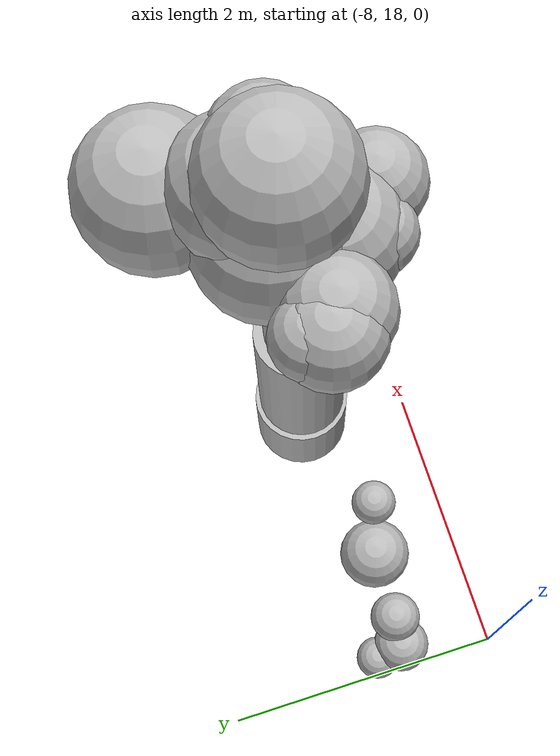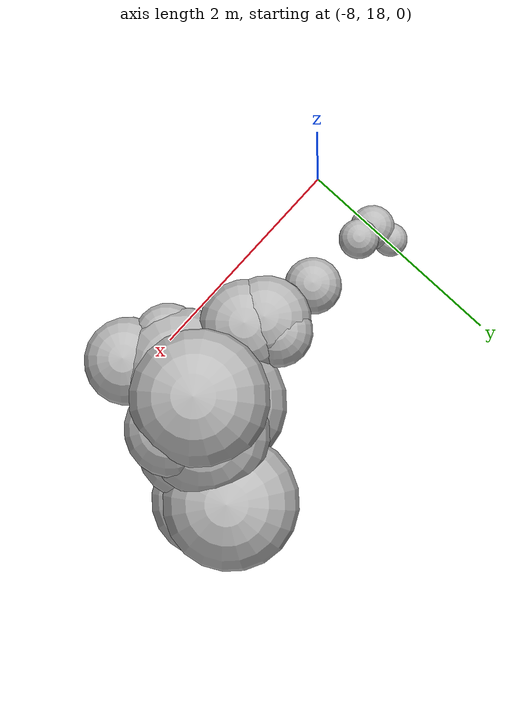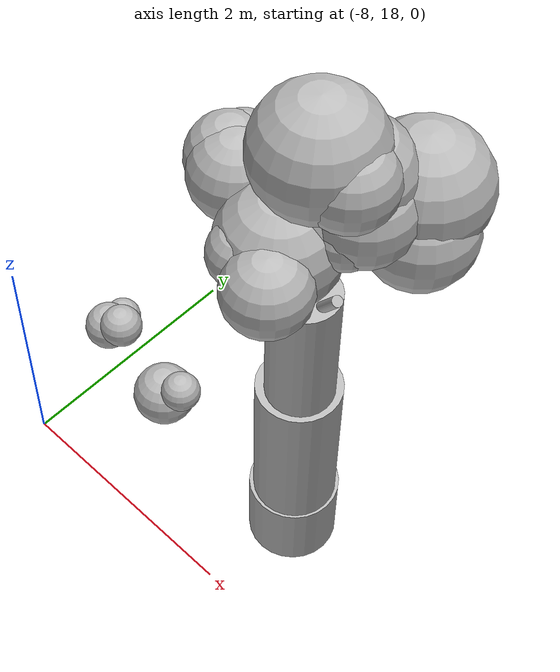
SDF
<sdf version="1.6">
 <world name="default">
  <model name="bush_8">
   <static>true</static>
   <pose>-5.8927 18.8179 0 0 0 0</pose>
   <link name="trunk">
    <pose>0 0 1.5000 0 0 0</pose>
    <collision name="trunk_c">
     <geometry><cylinder><radius>0.3500</radius><length>3.0000</length></cylinder></geometry>
    </collision>
   </link>
   <link name="trunk_v0">
    <pose>0.0014 -0.0010 0.3100 0 0 0</pose>
    <visual name="trunk_v0_v">
     <geometry><cylinder><radius>0.3448</radius><length>0.6448</length></cylinder></geometry>
     <material>
      <script>
       <uri>model://bushfire/materials/scripts</uri>
       <uri>model://bushfire/materials/textures</uri>
       <name>Bushfire/CharBark</name>
      </script>
     </material>
    </visual>
   </link>
   <link name="trunk_v1">
    <pose>0.0104 -0.0074 1.2700 0 0 0</pose>
    <visual name="trunk_v1_v">
     <geometry><cylinder><radius>0.3150</radius><length>1.3520</length></cylinder></geometry>
     <material>
      <script>
       <uri>model://bushfire/materials/scripts</uri>
       <uri>model://bushfire/materials/textures</uri>
       <name>Bushfire/BarkStringy</name>
      </script>
     </material>
    </visual>
   </link>
   <link name="trunk_v2">
    <pose>0.0263 -0.0187 2.4600 0 0 0</pose>
    <visual name="trunk_v2_v">
     <geometry><cylinder><radius>0.2520</radius><length>1.1232</length></cylinder></geometry>
     <material>
      <script>
       <uri>model://bushfire/materials/scripts</uri>
       <uri>model://bushfire/materials/textures</uri>
       <name>Bushfire/BarkStringy</name>
      </script>
     </material>
    </visual>
   </link>
   <link name="branch0">
    <pose>0.0580 0.2071 3.0791 0 0.5555 1.2979</pose>
    <visual name="branch0_v">
     <geometry><cylinder><radius>0.0413</radius><length>0.8155</length></cylinder></geometry>
     <material>
      <script>
       <uri>model://bushfire/materials/scripts</uri>
       <uri>model://bushfire/materials/textures</uri>
       <name>Bushfire/BarkStringy</name>
      </script>
     </material>
    </visual>
   </link>
   <link name="branch1">
    <pose>-0.2522 -0.0078 3.1472 0 0.6922 3.1724</pose>
    <visual name="branch1_v">
     <geometry><cylinder><radius>0.0447</radius><length>0.7907</length></cylinder></geometry>
     <material>
      <script>
       <uri>model://bushfire/materials/scripts</uri>
       <uri>model://bushfire/materials/textures</uri>
       <name>Bushfire/BarkStringy</name>
      </script>
     </material>
    </visual>
   </link>
   <link name="branch2">
    <pose>-0.0328 -0.1909 2.7849 0 0.7355 4.5420</pose>
    <visual name="branch2_v">
     <geometry><cylinder><radius>0.0536</radius><length>0.5775</length></cylinder></geometry>
     <material>
      <script>
       <uri>model://bushfire/materials/scripts</uri>
       <uri>model://bushfire/materials/textures</uri>
       <name>Bushfire/BarkStringy</name>
      </script>
     </material>
    </visual>
   </link>
   <link name="branch3">
    <pose>0.1578 -0.0224 2.9767 0 0.5870 6.1423</pose>
    <visual name="branch3_v">
     <geometry><cylinder><radius>0.0392</radius><length>0.5756</length></cylinder></geometry>
     <material>
      <script>
       <uri>model://bushfire/materials/scripts</uri>
       <uri>model://bushfire/materials/textures</uri>
       <name>Bushfire/BarkStringy</name>
      </script>
     </material>
    </visual>
   </link>
   <link name="foliage0">
    <pose>0.1099 0.2719 3.9514 0 0 0</pose>
    <visual name="foliage0_v">
     <geometry><sphere><radius>0.4008</radius></sphere></geometry>
     <material>
      <script>
       <uri>model://bushfire/materials/scripts</uri>
       <uri>model://bushfire/materials/textures</uri>
       <name>Bushfire/Foliage2</name>
      </script>
     </material>
    </visual>
   </link>
   <link name="foliage1">
    <pose>-0.5717 -0.0326 3.6846 0 0 0</pose>
    <visual name="foliage1_v">
     <geometry><sphere><radius>0.3190</radius></sphere></geometry>
     <material>
      <script>
       <uri>model://bushfire/materials/scripts</uri>
       <uri>model://bushfire/materials/textures</uri>
       <name>Bushfire/Foliage2</name>
      </script>
     </material>
    </visual>
   </link>
   <link name="foliage2">
    <pose>0.1235 -0.4739 3.5373 0 0 0</pose>
    <visual name="foliage2_v">
     <geometry><sphere><radius>0.2976</radius></sphere></geometry>
     <material>
      <script>
       <uri>model://bushfire/materials/scripts</uri>
       <uri>model://bushfire/materials/textures</uri>
       <name>Bushfire/Foliage1</name>
      </script>
     </material>
    </visual>
   </link>
   <link name="foliage3">
    <pose>0.2378 0.2304 3.7742 0 0 0</pose>
    <visual name="foliage3_v">
     <geometry><sphere><radius>0.3583</radius></sphere></geometry>
     <material>
      <script>
       <uri>model://bushfire/materials/scripts</uri>
       <uri>model://bushfire/materials/textures</uri>
       <name>Bushfire/Foliage1</name>
      </script>
     </material>
    </visual>
   </link>
   <link name="foliage4">
    <pose>0.4396 0.5447 3.4927 0 0 0</pose>
    <visual name="foliage4_v">
     <geometry><sphere><radius>0.3860</radius></sphere></geometry>
     <material>
      <script>
       <uri>model://bushfire/materials/scripts</uri>
       <uri>model://bushfire/materials/textures</uri>
       <name>Bushfire/Foliage1</name>
      </script>
     </material>
    </visual>
   </link>
   <link name="foliage5">
    <pose>-0.6810 0.1432 3.7200 0 0 0</pose>
    <visual name="foliage5_v">
     <geometry><sphere><radius>0.2331</radius></sphere></geometry>
     <material>
      <script>
       <uri>model://bushfire/materials/scripts</uri>
       <uri>model://bushfire/materials/textures</uri>
       <name>Bushfire/Foliage1</name>
      </script>
     </material>
    </visual>
   </link>
   <link name="foliage6">
    <pose>-0.1697 -0.3821 3.5592 0 0 0</pose>
    <visual name="foliage6_v">
     <geometry><sphere><radius>0.2337</radius></sphere></geometry>
     <material>
      <script>
       <uri>model://bushfire/materials/scripts</uri>
       <uri>model://bushfire/materials/textures</uri>
       <name>Bushfire/Foliage1</name>
      </script>
     </material>
    </visual>
   </link>
   <link name="foliage7">
    <pose>0.2203 0.0989 4.1093 0 0 0</pose>
    <visual name="foliage7_v">
     <geometry><sphere><radius>0.3084</radius></sphere></geometry>
     <material>
      <script>
       <uri>model://bushfire/materials/scripts</uri>
       <uri>model://bushfire/materials/textures</uri>
       <name>Bushfire/Foliage0</name>
      </script>
     </material>
    </visual>
   </link>
   <link name="foliage8">
    <pose>0.3403 0.6688 3.7234 0 0 0</pose>
    <visual name="foliage8_v">
     <geometry><sphere><radius>0.4473</radius></sphere></geometry>
     <material>
      <script>
       <uri>model://bushfire/materials/scripts</uri>
       <uri>model://bushfire/materials/textures</uri>
       <name>Bushfire/Foliage2</name>
      </script>
     </material>
    </visual>
   </link>
   <link name="foliage9">
    <pose>-0.6866 0.0340 3.6926 0 0 0</pose>
    <visual name="foliage9_v">
     <geometry><sphere><radius>0.3007</radius></sphere></geometry>
     <material>
      <script>
       <uri>model://bushfire/materials/scripts</uri>
       <uri>model://bushfire/materials/textures</uri>
       <name>Bushfire/Foliage1</name>
      </script>
     </material>
    </visual>
   </link>
   <link name="foliage10">
    <pose>-0.0785 -0.1615 3.5293 0 0 0</pose>
    <visual name="foliage10_v">
     <geometry><sphere><radius>0.4228</radius></sphere></geometry>
     <material>
      <script>
       <uri>model://bushfire/materials/scripts</uri>
       <uri>model://bushfire/materials/textures</uri>
       <name>Bushfire/Foliage0</name>
      </script>
     </material>
    </visual>
   </link>
   <link name="foliage11">
    <pose>0.2344 0.0767 3.6878 0 0 0</pose>
    <visual name="foliage11_v">
     <geometry><sphere><radius>0.2330</radius></sphere></geometry>
     <material>
      <script>
       <uri>model://bushfire/materials/scripts</uri>
       <uri>model://bushfire/materials/textures</uri>
       <name>Bushfire/Foliage2</name>
      </script>
     </material>
    </visual>
   </link>
   <link name="foliage12">
    <pose>-0.0722 0.1676 3.6549 0 0 0</pose>
    <visual name="foliage12_v">
     <geometry><sphere><radius>0.4548</radius></sphere></geometry>
     <material>
      <script>
       <uri>model://bushfire/materials/scripts</uri>
       <uri>model://bushfire/materials/textures</uri>
       <name>Bushfire/Foliage0</name>
      </script>
     </material>
    </visual>
   </link>
   <link name="foliage13">
    <pose>-0.0298 0.1011 4.1849 0 0 0</pose>
    <visual name="foliage13_v">
     <geometry><sphere><radius>0.4419</radius></sphere></geometry>
     <material>
      <script>
       <uri>model://bushfire/materials/scripts</uri>
       <uri>model://bushfire/materials/textures</uri>
       <name>Bushfire/Foliage2</name>
      </script>
     </material>
    </visual>
   </link>
  </model>
  <model name="scrub">
   <static>true</static>
   <link name="scrub12_0">
    <pose>-7.8997 18.7265 0.7961 0 0 0</pose>
    <visual name="scrub12_0_v">
     <geometry><sphere><radius>0.1909</radius></sphere></geometry>
     <material>
      <script>
       <uri>model://bushfire/materials/scripts</uri>
       <uri>model://bushfire/materials/textures</uri>
       <name>Bushfire/Foliage1</name>
      </script>
     </material>
    </visual>
   </link>
   <link name="scrub12_3">
    <pose>-7.7248 18.7216 0.9652 0 0 0</pose>
    <visual name="scrub12_3_v">
     <geometry><sphere><radius>0.1707</radius></sphere></geometry>
     <material>
      <script>
       <uri>model://bushfire/materials/scripts</uri>
       <uri>model://bushfire/materials/textures</uri>
       <name>Bushfire/Foliage2</name>
      </script>
     </material>
    </visual>
   </link>
   <link name="scrub12_4">
    <pose>-7.9329 18.9072 0.7275 0 0 0</pose>
    <visual name="scrub12_4_v">
     <geometry><sphere><radius>0.1474</radius></sphere></geometry>
     <material>
      <script>
       <uri>model://bushfire/materials/scripts</uri>
       <uri>model://bushfire/materials/textures</uri>
       <name>Bushfire/Foliage0</name>
      </script>
     </material>
    </visual>
   </link>
   <link name="scrub42_4">
    <pose>-7.1968 18.6745 0.5938 0 0 0</pose>
    <visual name="scrub42_4_v">
     <geometry><sphere><radius>0.2509</radius></sphere></geometry>
     <material>
      <script>
       <uri>model://bushfire/materials/scripts</uri>
       <uri>model://bushfire/materials/textures</uri>
       <name>Bushfire/Foliage0</name>
      </script>
     </material>
    </visual>
   </link>
   <link name="scrub42_6">
    <pose>-6.9133 18.6060 0.9930 0 0 0</pose>
    <visual name="scrub42_6_v">
     <geometry><sphere><radius>0.1558</radius></sphere></geometry>
     <material>
      <script>
       <uri>model://bushfire/materials/scripts</uri>
       <uri>model://bushfire/materials/textures</uri>
       <name>Bushfire/Foliage0</name>
      </script>
     </material>
    </visual>
   </link>
  </model>
 </world>
</sdf>
